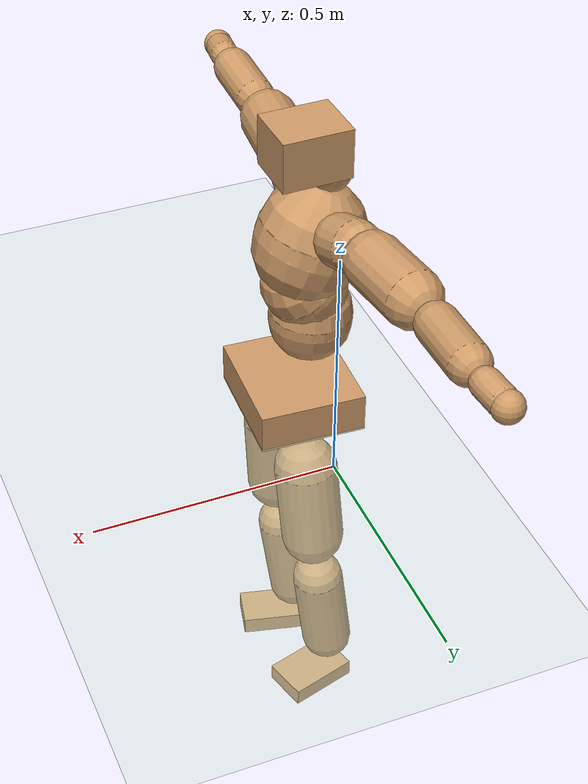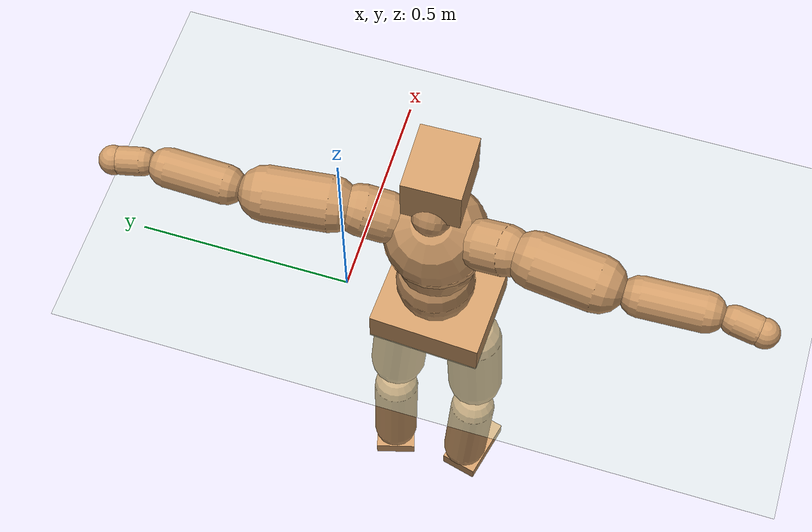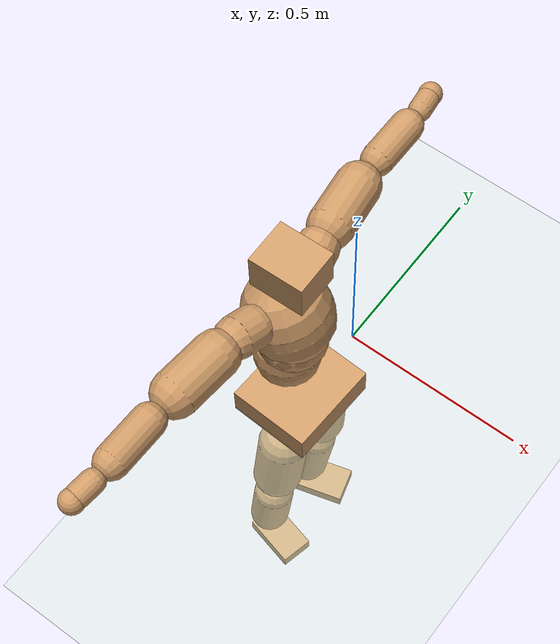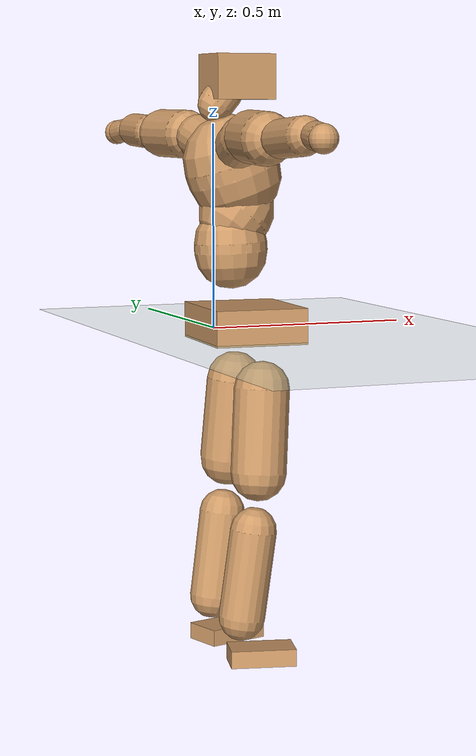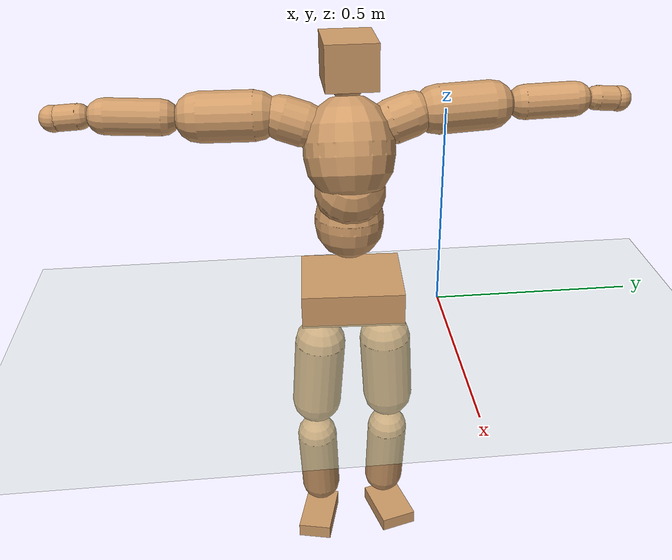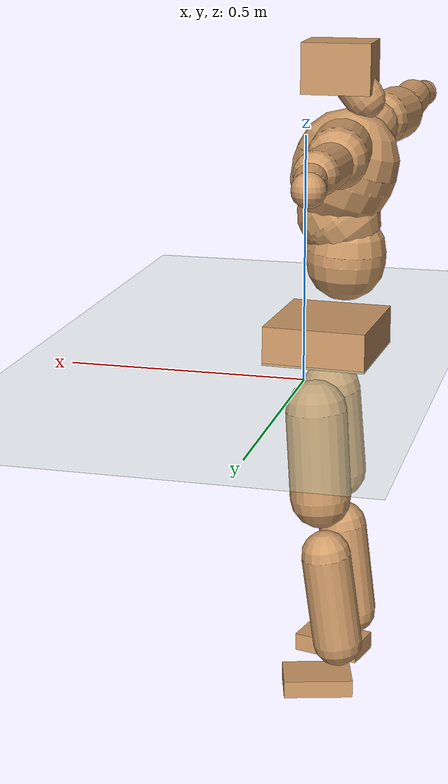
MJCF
<mujoco model="humanoid">
  <compiler coordinate="local" angle="radian"/>
  <default>
    <joint damping="0.0" armature="0.01" stiffness="0.0" limited="true"/>
    <geom conaffinity="1" condim="3" contype="7" margin="0.001" rgba="0.8 0.6 .4 1"/>
  </default>
  <asset>
    <texture type="skybox" builtin="gradient" rgb1=".4 .5 .6" rgb2="0 0 0" width="100" height="100"/>
    <texture builtin="flat" height="1278" mark="cross" markrgb="1 1 1" name="texgeom" random="0.01" rgb1="0.8 0.6 0.4" rgb2="0.8 0.6 0.4" type="cube" width="127"/>
    <texture builtin="checker" height="100" name="texplane" rgb1="0 0 0" rgb2="0.8 0.8 0.8" type="2d" width="100"/>
    <material name="MatPlane" reflectance="0.5" shininess="1" specular="1" texrepeat="60 60" texture="texplane"/>
    <material name="geom" texture="texgeom" texuniform="true"/>
  </asset>
  <worldbody>
    <light cutoff="100" diffuse="1 1 1" dir="-0 0 -1.3" directional="true" exponent="1" pos="0 0 1.3" specular=".1 .1 .1"/>
    <geom conaffinity="1" condim="3" name="floor" pos="0 0 0" rgba="0.8 0.9 0.8 1" size="100 100 .2" type="plane" material="MatPlane"/>
    <body name="Pelvis" pos="0.0001 -0.2224 0.049">
      <freejoint name="Pelvis"/>
      <geom type="box" contype="1" conaffinity="1" density="500" pos="-0.0038 0.0002 -0.0133" size="0.1108 0.1267 0.0423" quat="0.9997 0.0000 0.0000 -0.0240" name="Pelvis"/>
      <body name="L_Hip" pos="0.0063 0.0823 -0.0934">
        <joint name="L_Hip_x" type="hinge" pos="0 0 0" axis="1 0 0" stiffness="800" damping="80" armature="0.02" range="-180.0000 180.0000"/>
        <joint name="L_Hip_y" type="hinge" pos="0 0 0" axis="0 1 0" stiffness="800" damping="80" armature="0.02" range="-180.0000 180.0000"/>
        <joint name="L_Hip_z" type="hinge" pos="0 0 0" axis="0 0 1" stiffness="800" damping="80" armature="0.02" range="-180.0000 180.0000"/>
        <geom type="capsule" contype="1" conaffinity="1" density="500" fromto="-0.0048 0.0035 -0.0645 -0.0190 0.0142 -0.2580" size="0.0664" name="L_Hip"/>
        <body name="L_Knee" pos="-0.0238 0.0177 -0.3225">
          <joint name="L_Knee_x" type="hinge" pos="0 0 0" axis="1 0 0" stiffness="800" damping="80" armature="0.02" range="-180.0000 180.0000"/>
          <joint name="L_Knee_y" type="hinge" pos="0 0 0" axis="0 1 0" stiffness="800" damping="80" armature="0.02" range="-180.0000 180.0000"/>
          <joint name="L_Knee_z" type="hinge" pos="0 0 0" axis="0 0 1" stiffness="800" damping="80" armature="0.02" range="-180.0000 180.0000"/>
          <geom type="capsule" contype="1" conaffinity="1" density="500" fromto="-0.0093 -0.0018 -0.0684 -0.0371 -0.0073 -0.2736" size="0.0547" name="L_Knee"/>
          <body name="L_Ankle" pos="-0.0464 -0.0091 -0.342">
            <joint name="L_Ankle_x" type="hinge" pos="0 0 0" axis="1 0 0" stiffness="800" damping="80" armature="0.02" range="-180.0000 180.0000"/>
            <joint name="L_Ankle_y" type="hinge" pos="0 0 0" axis="0 1 0" stiffness="800" damping="80" armature="0.02" range="-180.0000 180.0000"/>
            <joint name="L_Ankle_z" type="hinge" pos="0 0 0" axis="0 0 1" stiffness="800" damping="80" armature="0.02" range="-180.0000 180.0000"/>
            <geom type="box" contype="1" conaffinity="1" density="500" pos="0.0522 0.0145 -0.0253" size="0.0756 0.0495 0.0195" quat="0.9908 0.0000 0.0000 0.1353" name="L_Ankle"/>
            <body name="L_Toe" pos="0.1043 0.029 -0.0506">
              <joint name="L_Toe_x" type="hinge" pos="0 0 0" axis="1 0 0" stiffness="500" damping="50" armature="0.02" range="-180.0000 180.0000"/>
              <joint name="L_Toe_y" type="hinge" pos="0 0 0" axis="0 1 0" stiffness="500" damping="50" armature="0.02" range="-180.0000 180.0000"/>
              <joint name="L_Toe_z" type="hinge" pos="0 0 0" axis="0 0 1" stiffness="500" damping="50" armature="0.02" range="-180.0000 180.0000"/>
              <geom type="box" contype="1" conaffinity="1" density="500" pos="0.0000 0.0000 0.0254" size="0.001 0.0024 0.001" quat="0.9899 0.0000 0.0000 0.1415" name="L_Toe"/>
            </body>
          </body>
        </body>
      </body>
      <body name="R_Hip" pos="0.0086 -0.0802 -0.0952">
        <joint name="R_Hip_x" type="hinge" pos="0 0 0" axis="1 0 0" stiffness="800" damping="80" armature="0.02" range="-180.0000 180.0000"/>
        <joint name="R_Hip_y" type="hinge" pos="0 0 0" axis="0 1 0" stiffness="800" damping="80" armature="0.02" range="-180.0000 180.0000"/>
        <joint name="R_Hip_z" type="hinge" pos="0 0 0" axis="0 0 1" stiffness="800" damping="80" armature="0.02" range="-180.0000 180.0000"/>
        <geom type="capsule" contype="1" conaffinity="1" density="500" fromto="-0.0048 -0.0049 -0.0654 -0.0190 -0.0196 -0.2616" size="0.0657" name="R_Hip"/>
        <body name="R_Knee" pos="-0.0238 -0.0245 -0.327">
          <joint name="R_Knee_x" type="hinge" pos="0 0 0" axis="1 0 0" stiffness="800" damping="80" armature="0.02" range="-180.0000 180.0000"/>
          <joint name="R_Knee_y" type="hinge" pos="0 0 0" axis="0 1 0" stiffness="800" damping="80" armature="0.02" range="-180.0000 180.0000"/>
          <joint name="R_Knee_z" type="hinge" pos="0 0 0" axis="0 0 1" stiffness="800" damping="80" armature="0.02" range="-180.0000 180.0000"/>
          <geom type="capsule" contype="1" conaffinity="1" density="500" fromto="-0.0091 0.0021 -0.0691 -0.0365 0.0085 -0.2764" size="0.0546" name="R_Knee"/>
          <body name="R_Ankle" pos="-0.0456 0.0106 -0.3454">
            <joint name="R_Ankle_x" type="hinge" pos="0 0 0" axis="1 0 0" stiffness="800" damping="80" armature="0.02" range="-180.0000 180.0000"/>
            <joint name="R_Ankle_y" type="hinge" pos="0 0 0" axis="0 1 0" stiffness="800" damping="80" armature="0.02" range="-180.0000 180.0000"/>
            <joint name="R_Ankle_z" type="hinge" pos="0 0 0" axis="0 0 1" stiffness="800" damping="80" armature="0.02" range="-180.0000 180.0000"/>
            <geom type="box" contype="1" conaffinity="1" density="500" pos="0.0543 -0.0132 -0.0223" size="0.077 0.0454 0.0203" quat="0.9928 0.0000 0.0000 -0.1194" name="R_Ankle"/>
            <body name="R_Toe" pos="0.1085 -0.0265 -0.0446">
              <joint name="R_Toe_x" type="hinge" pos="0 0 0" axis="1 0 0" stiffness="500" damping="50" armature="0.02" range="-180.0000 180.0000"/>
              <joint name="R_Toe_y" type="hinge" pos="0 0 0" axis="0 1 0" stiffness="500" damping="50" armature="0.02" range="-180.0000 180.0000"/>
              <joint name="R_Toe_z" type="hinge" pos="0 0 0" axis="0 0 1" stiffness="500" damping="50" armature="0.02" range="-180.0000 180.0000"/>
              <geom type="box" contype="1" conaffinity="1" density="500" pos="0.0000 0.0000 0.0231" size="0.001 0.0023 0.0011" quat="0.9941 0.0000 0.0000 -0.1088" name="R_Toe"/>
            </body>
          </body>
        </body>
      </body>
      <body name="Torso" pos="-0.0378 -0.001 0.1088">
        <joint name="Torso_x" type="hinge" pos="0 0 0" axis="1 0 0" stiffness="1000" damping="100" armature="0.02" range="-180.0000 180.0000"/>
        <joint name="Torso_y" type="hinge" pos="0 0 0" axis="0 1 0" stiffness="1000" damping="100" armature="0.02" range="-180.0000 180.0000"/>
        <joint name="Torso_z" type="hinge" pos="0 0 0" axis="0 0 1" stiffness="1000" damping="100" armature="0.02" range="-180.0000 180.0000"/>
        <geom type="capsule" contype="1" conaffinity="1" density="500" fromto="-0.0033 0.0012 0.0687 -0.0022 0.0008 0.0458" size="0.0857" name="Torso"/>
        <body name="Spine" pos="-0.0054 0.002 0.1144">
          <joint name="Spine_x" type="hinge" pos="0 0 0" axis="1 0 0" stiffness="1000" damping="100" armature="0.02" range="-180.0000 180.0000"/>
          <joint name="Spine_y" type="hinge" pos="0 0 0" axis="0 1 0" stiffness="1000" damping="100" armature="0.02" range="-180.0000 180.0000"/>
          <joint name="Spine_z" type="hinge" pos="0 0 0" axis="0 0 1" stiffness="1000" damping="100" armature="0.02" range="-180.0000 180.0000"/>
          <geom type="capsule" contype="1" conaffinity="1" density="500" fromto="0.0221 0.0011 0.0292 0.0148 0.0007 0.0195" size="0.0864" name="Spine"/>
          <body name="Chest" pos="0.0369 0.0018 0.0487">
            <joint name="Chest_x" type="hinge" pos="0 0 0" axis="1 0 0" stiffness="1000" damping="100" armature="0.02" range="-180.0000 180.0000"/>
            <joint name="Chest_y" type="hinge" pos="0 0 0" axis="0 1 0" stiffness="1000" damping="100" armature="0.02" range="-180.0000 180.0000"/>
            <joint name="Chest_z" type="hinge" pos="0 0 0" axis="0 0 1" stiffness="1000" damping="100" armature="0.02" range="-180.0000 180.0000"/>
            <geom type="capsule" contype="1" conaffinity="1" density="500" fromto="-0.0349 -0.0003 0.0944 -0.0233 -0.0002 0.0629" size="0.1103" name="Chest"/>
            <body name="Neck" pos="-0.0778 -0.0001 0.2161">
              <joint name="Neck_x" type="hinge" pos="0 0 0" axis="1 0 0" stiffness="500" damping="50" armature="0.02" range="-180.0000 180.0000"/>
              <joint name="Neck_y" type="hinge" pos="0 0 0" axis="0 1 0" stiffness="500" damping="50" armature="0.02" range="-180.0000 180.0000"/>
              <joint name="Neck_z" type="hinge" pos="0 0 0" axis="0 0 1" stiffness="500" damping="50" armature="0.02" range="-180.0000 180.0000"/>
              <geom type="capsule" contype="1" conaffinity="1" density="500" fromto="0.0080 -0.0002 0.0097 0.0320 -0.0009 0.0389" size="0.0421" name="Neck"/>
              <body name="Head" pos="0.04 -0.0011 0.0486">
                <joint name="Head_x" type="hinge" pos="0 0 0" axis="1 0 0" stiffness="500" damping="50" armature="0.02" range="-180.0000 180.0000"/>
                <joint name="Head_y" type="hinge" pos="0 0 0" axis="0 1 0" stiffness="500" damping="50" armature="0.02" range="-180.0000 180.0000"/>
                <joint name="Head_z" type="hinge" pos="0 0 0" axis="0 0 1" stiffness="500" damping="50" armature="0.02" range="-180.0000 180.0000"/>
                <geom type="box" contype="1" conaffinity="1" density="500" pos="0.0210 0.0005 0.0253" size="0.0721 0.0605 0.0525" quat="0.9999 0.0000 0.0000 0.0108" name="Head"/>
              </body>
            </body>
            <body name="L_Thorax" pos="-0.046 0.0821 0.1284">
              <joint name="L_Thorax_x" type="hinge" pos="0 0 0" axis="1 0 0" stiffness="500" damping="50" armature="0.02" range="-180.0000 180.0000"/>
              <joint name="L_Thorax_y" type="hinge" pos="0 0 0" axis="0 1 0" stiffness="500" damping="50" armature="0.02" range="-180.0000 180.0000"/>
              <joint name="L_Thorax_z" type="hinge" pos="0 0 0" axis="0 0 1" stiffness="500" damping="50" armature="0.02" range="-180.0000 180.0000"/>
              <geom type="capsule" contype="1" conaffinity="1" density="500" fromto="-0.0026 0.0172 0.0052 -0.0103 0.0688 0.0209" size="0.0541" name="L_Thorax"/>
              <body name="L_Shoulder" pos="-0.0129 0.086 0.0262">
                <joint name="L_Shoulder_x" type="hinge" pos="0 0 0" axis="1 0 0" stiffness="500" damping="50" armature="0.02" range="-720.0000 720.0000"/>
                <joint name="L_Shoulder_y" type="hinge" pos="0 0 0" axis="0 1 0" stiffness="500" damping="50" armature="0.02" range="-720.0000 720.0000"/>
                <joint name="L_Shoulder_z" type="hinge" pos="0 0 0" axis="0 0 1" stiffness="500" damping="50" armature="0.02" range="-720.0000 720.0000"/>
                <geom type="capsule" contype="1" conaffinity="1" density="500" fromto="-0.0054 0.0439 0.0004 -0.0214 0.1757 0.0017" size="0.059" name="L_Shoulder"/>
                <body name="L_Elbow" pos="-0.0268 0.2197 0.0021">
                  <joint name="L_Elbow_x" type="hinge" pos="0 0 0" axis="1 0 0" stiffness="500" damping="50" armature="0.02" range="-720.0000 720.0000"/>
                  <joint name="L_Elbow_y" type="hinge" pos="0 0 0" axis="0 1 0" stiffness="500" damping="50" armature="0.02" range="-720.0000 720.0000"/>
                  <joint name="L_Elbow_z" type="hinge" pos="0 0 0" axis="0 0 1" stiffness="500" damping="50" armature="0.02" range="-720.0000 720.0000"/>
                  <geom type="capsule" contype="1" conaffinity="1" density="500" fromto="0.0004 0.0412 0.0014 0.0016 0.1648 0.0055" size="0.0421" name="L_Elbow"/>
                  <body name="L_Wrist" pos="0.002 0.2059 0.0069">
                    <joint name="L_Wrist_x" type="hinge" pos="0 0 0" axis="1 0 0" stiffness="300" damping="30" armature="0.02" range="-180.0000 180.0000"/>
                    <joint name="L_Wrist_y" type="hinge" pos="0 0 0" axis="0 1 0" stiffness="300" damping="30" armature="0.02" range="-180.0000 180.0000"/>
                    <joint name="L_Wrist_z" type="hinge" pos="0 0 0" axis="0 0 1" stiffness="300" damping="30" armature="0.02" range="-180.0000 180.0000"/>
                    <geom type="capsule" contype="1" conaffinity="1" density="500" fromto="-0.0024 0.0152 -0.0017 -0.0097 0.0607 -0.0069" size="0.0298" name="L_Wrist"/>
                    <body name="L_Hand" pos="-0.0122 0.0759 -0.0087">
                      <joint name="L_Hand_x" type="hinge" pos="0 0 0" axis="1 0 0" stiffness="300" damping="30" armature="0.02" range="-180.0000 180.0000"/>
                      <joint name="L_Hand_y" type="hinge" pos="0 0 0" axis="0 1 0" stiffness="300" damping="30" armature="0.02" range="-180.0000 180.0000"/>
                      <joint name="L_Hand_z" type="hinge" pos="0 0 0" axis="0 0 1" stiffness="300" damping="30" armature="0.02" range="-180.0000 180.0000"/>
                      <geom type="sphere" contype="1" conaffinity="1" density="500" size="0.0310" pos="0.0000 0.0000 0.0000" name="L_Hand"/>
                    </body>
                  </body>
                </body>
              </body>
            </body>
            <body name="R_Thorax" pos="-0.0508 -0.0836 0.1274">
              <joint name="R_Thorax_x" type="hinge" pos="0 0 0" axis="1 0 0" stiffness="500" damping="50" armature="0.02" range="-180.0000 180.0000"/>
              <joint name="R_Thorax_y" type="hinge" pos="0 0 0" axis="0 1 0" stiffness="500" damping="50" armature="0.02" range="-180.0000 180.0000"/>
              <joint name="R_Thorax_z" type="hinge" pos="0 0 0" axis="0 0 1" stiffness="500" damping="50" armature="0.02" range="-180.0000 180.0000"/>
              <geom type="capsule" contype="1" conaffinity="1" density="500" fromto="-0.0026 -0.0178 0.0057 -0.0103 -0.0710 0.0226" size="0.0535" name="R_Thorax"/>
              <body name="R_Shoulder" pos="-0.0129 -0.0888 0.0283">
                <joint name="R_Shoulder_x" type="hinge" pos="0 0 0" axis="1 0 0" stiffness="500" damping="50" armature="0.02" range="-720.0000 720.0000"/>
                <joint name="R_Shoulder_y" type="hinge" pos="0 0 0" axis="0 1 0" stiffness="500" damping="50" armature="0.02" range="-720.0000 720.0000"/>
                <joint name="R_Shoulder_z" type="hinge" pos="0 0 0" axis="0 0 1" stiffness="500" damping="50" armature="0.02" range="-720.0000 720.0000"/>
                <geom type="capsule" contype="1" conaffinity="1" density="500" fromto="-0.0043 -0.0433 -0.0010 -0.0171 -0.1731 -0.0042" size="0.0598" name="R_Shoulder"/>
                <body name="R_Elbow" pos="-0.0214 -0.2164 -0.0052">
                  <joint name="R_Elbow_x" type="hinge" pos="0 0 0" axis="1 0 0" stiffness="500" damping="50" armature="0.02" range="-720.0000 720.0000"/>
                  <joint name="R_Elbow_y" type="hinge" pos="0 0 0" axis="0 1 0" stiffness="500" damping="50" armature="0.02" range="-720.0000 720.0000"/>
                  <joint name="R_Elbow_z" type="hinge" pos="0 0 0" axis="0 0 1" stiffness="500" damping="50" armature="0.02" range="-720.0000 720.0000"/>
                  <geom type="capsule" contype="1" conaffinity="1" density="500" fromto="0.0002 -0.0427 0.0025 0.0009 -0.1707 0.0100" size="0.0425" name="R_Elbow"/>
                  <body name="R_Wrist" pos="0.0012 -0.2134 0.0126">
                    <joint name="R_Wrist_x" type="hinge" pos="0 0 0" axis="1 0 0" stiffness="300" damping="30" armature="0.02" range="-180.0000 180.0000"/>
                    <joint name="R_Wrist_y" type="hinge" pos="0 0 0" axis="0 1 0" stiffness="300" damping="30" armature="0.02" range="-180.0000 180.0000"/>
                    <joint name="R_Wrist_z" type="hinge" pos="0 0 0" axis="0 0 1" stiffness="300" damping="30" armature="0.02" range="-180.0000 180.0000"/>
                    <geom type="capsule" contype="1" conaffinity="1" density="500" fromto="-0.0020 -0.0152 -0.0013 -0.0080 -0.0608 -0.0053" size="0.0304" name="R_Wrist"/>
                    <body name="R_Hand" pos="-0.01 -0.076 -0.0066">
                      <joint name="R_Hand_x" type="hinge" pos="0 0 0" axis="1 0 0" stiffness="300" damping="30" armature="0.02" range="-180.0000 180.0000"/>
                      <joint name="R_Hand_y" type="hinge" pos="0 0 0" axis="0 1 0" stiffness="300" damping="30" armature="0.02" range="-180.0000 180.0000"/>
                      <joint name="R_Hand_z" type="hinge" pos="0 0 0" axis="0 0 1" stiffness="300" damping="30" armature="0.02" range="-180.0000 180.0000"/>
                      <geom type="sphere" contype="1" conaffinity="1" density="500" size="0.0311" pos="0.0000 0.0000 0.0000" name="R_Hand"/>
                    </body>
                  </body>
                </body>
              </body>
            </body>
          </body>
        </body>
      </body>
    </body>
  </worldbody>
  <actuator>
    <motor name="L_Hip_x" joint="L_Hip_x" gear="500"/>
    <motor name="L_Hip_y" joint="L_Hip_y" gear="500"/>
    <motor name="L_Hip_z" joint="L_Hip_z" gear="500"/>
    <motor name="L_Knee_x" joint="L_Knee_x" gear="500"/>
    <motor name="L_Knee_y" joint="L_Knee_y" gear="500"/>
    <motor name="L_Knee_z" joint="L_Knee_z" gear="500"/>
    <motor name="L_Ankle_x" joint="L_Ankle_x" gear="500"/>
    <motor name="L_Ankle_y" joint="L_Ankle_y" gear="500"/>
    <motor name="L_Ankle_z" joint="L_Ankle_z" gear="500"/>
    <motor name="L_Toe_x" joint="L_Toe_x" gear="500"/>
    <motor name="L_Toe_y" joint="L_Toe_y" gear="500"/>
    <motor name="L_Toe_z" joint="L_Toe_z" gear="500"/>
    <motor name="R_Hip_x" joint="R_Hip_x" gear="500"/>
    <motor name="R_Hip_y" joint="R_Hip_y" gear="500"/>
    <motor name="R_Hip_z" joint="R_Hip_z" gear="500"/>
    <motor name="R_Knee_x" joint="R_Knee_x" gear="500"/>
    <motor name="R_Knee_y" joint="R_Knee_y" gear="500"/>
    <motor name="R_Knee_z" joint="R_Knee_z" gear="500"/>
    <motor name="R_Ankle_x" joint="R_Ankle_x" gear="500"/>
    <motor name="R_Ankle_y" joint="R_Ankle_y" gear="500"/>
    <motor name="R_Ankle_z" joint="R_Ankle_z" gear="500"/>
    <motor name="R_Toe_x" joint="R_Toe_x" gear="500"/>
    <motor name="R_Toe_y" joint="R_Toe_y" gear="500"/>
    <motor name="R_Toe_z" joint="R_Toe_z" gear="500"/>
    <motor name="Torso_x" joint="Torso_x" gear="500"/>
    <motor name="Torso_y" joint="Torso_y" gear="500"/>
    <motor name="Torso_z" joint="Torso_z" gear="500"/>
    <motor name="Spine_x" joint="Spine_x" gear="500"/>
    <motor name="Spine_y" joint="Spine_y" gear="500"/>
    <motor name="Spine_z" joint="Spine_z" gear="500"/>
    <motor name="Chest_x" joint="Chest_x" gear="500"/>
    <motor name="Chest_y" joint="Chest_y" gear="500"/>
    <motor name="Chest_z" joint="Chest_z" gear="500"/>
    <motor name="Neck_x" joint="Neck_x" gear="500"/>
    <motor name="Neck_y" joint="Neck_y" gear="500"/>
    <motor name="Neck_z" joint="Neck_z" gear="500"/>
    <motor name="Head_x" joint="Head_x" gear="500"/>
    <motor name="Head_y" joint="Head_y" gear="500"/>
    <motor name="Head_z" joint="Head_z" gear="500"/>
    <motor name="L_Thorax_x" joint="L_Thorax_x" gear="500"/>
    <motor name="L_Thorax_y" joint="L_Thorax_y" gear="500"/>
    <motor name="L_Thorax_z" joint="L_Thorax_z" gear="500"/>
    <motor name="L_Shoulder_x" joint="L_Shoulder_x" gear="500"/>
    <motor name="L_Shoulder_y" joint="L_Shoulder_y" gear="500"/>
    <motor name="L_Shoulder_z" joint="L_Shoulder_z" gear="500"/>
    <motor name="L_Elbow_x" joint="L_Elbow_x" gear="500"/>
    <motor name="L_Elbow_y" joint="L_Elbow_y" gear="500"/>
    <motor name="L_Elbow_z" joint="L_Elbow_z" gear="500"/>
    <motor name="L_Wrist_x" joint="L_Wrist_x" gear="500"/>
    <motor name="L_Wrist_y" joint="L_Wrist_y" gear="500"/>
    <motor name="L_Wrist_z" joint="L_Wrist_z" gear="500"/>
    <motor name="L_Hand_x" joint="L_Hand_x" gear="500"/>
    <motor name="L_Hand_y" joint="L_Hand_y" gear="500"/>
    <motor name="L_Hand_z" joint="L_Hand_z" gear="500"/>
    <motor name="R_Thorax_x" joint="R_Thorax_x" gear="500"/>
    <motor name="R_Thorax_y" joint="R_Thorax_y" gear="500"/>
    <motor name="R_Thorax_z" joint="R_Thorax_z" gear="500"/>
    <motor name="R_Shoulder_x" joint="R_Shoulder_x" gear="500"/>
    <motor name="R_Shoulder_y" joint="R_Shoulder_y" gear="500"/>
    <motor name="R_Shoulder_z" joint="R_Shoulder_z" gear="500"/>
    <motor name="R_Elbow_x" joint="R_Elbow_x" gear="500"/>
    <motor name="R_Elbow_y" joint="R_Elbow_y" gear="500"/>
    <motor name="R_Elbow_z" joint="R_Elbow_z" gear="500"/>
    <motor name="R_Wrist_x" joint="R_Wrist_x" gear="500"/>
    <motor name="R_Wrist_y" joint="R_Wrist_y" gear="500"/>
    <motor name="R_Wrist_z" joint="R_Wrist_z" gear="500"/>
    <motor name="R_Hand_x" joint="R_Hand_x" gear="500"/>
    <motor name="R_Hand_y" joint="R_Hand_y" gear="500"/>
    <motor name="R_Hand_z" joint="R_Hand_z" gear="500"/>
  </actuator>
  <contact>
    <exclude body1="Torso" body2="Chest"/>
    <exclude body1="Head" body2="Chest"/>
    <exclude body1="R_Knee" body2="R_Toe"/>
    <exclude body1="R_Knee" body2="L_Ankle"/>
    <exclude body1="R_Knee" body2="L_Toe"/>
    <exclude body1="L_Knee" body2="L_Toe"/>
    <exclude body1="L_Knee" body2="R_Ankle"/>
    <exclude body1="L_Knee" body2="R_Toe"/>
    <exclude body1="L_Shoulder" body2="Chest"/>
    <exclude body1="R_Shoulder" body2="Chest"/>
  </contact>
  <sensor/>
  <size njmax="700" nconmax="700"/>
</mujoco>
